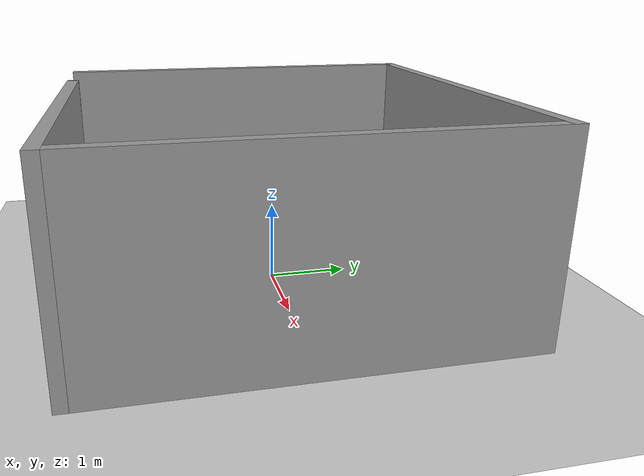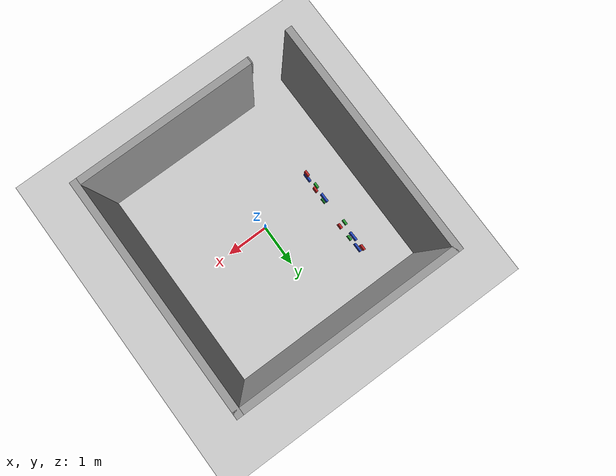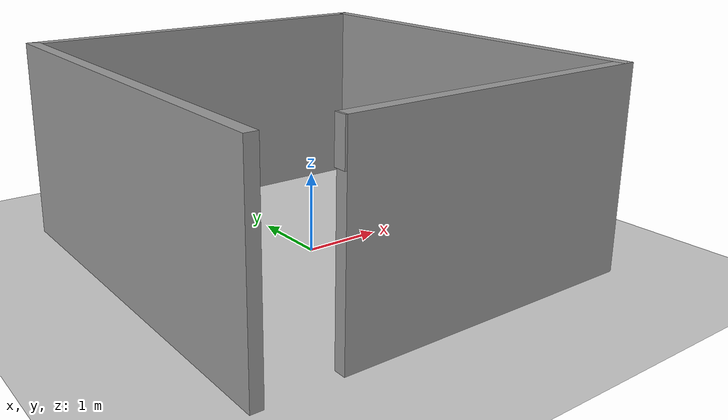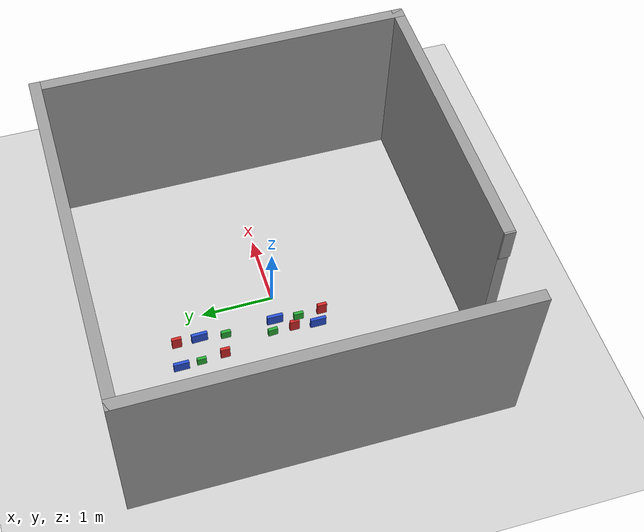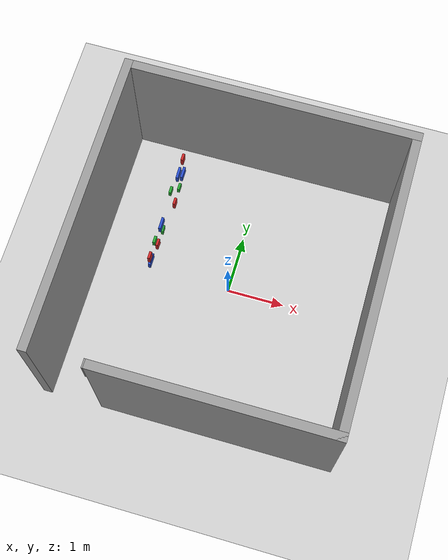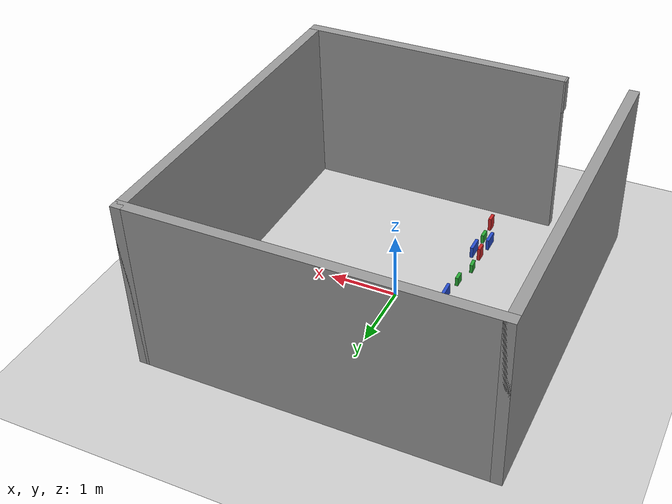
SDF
<sdf version="1.7">
 <world name="default">
  <light name="sun" type="directional">
   <pose>0 0 10 0 -0 0</pose>
   <diffuse>0.8 0.8 0.8 1</diffuse>
   <specular>0.2 0.2 0.2 1</specular>
   <attenuation>
    <range>1000</range>
    <constant>0.9</constant>
    <linear>0.01</linear>
    <quadratic>0.001</quadratic>
   </attenuation>
   <direction>-0.5 0.1 -0.9</direction>
   <spot><inner_angle>0</inner_angle><outer_angle>0</outer_angle><falloff>0</falloff></spot>
  </light>
  <model name="ground_plane">
   <static>1</static>
   <link name="link">
    <collision name="collision">
     <geometry><plane><normal>0 0 1</normal><size>100 100</size></plane></geometry>
     <surface>
      <contact><collide_bitmask>65535</collide_bitmask></contact>
      <friction><ode><mu>100</mu><mu2>50</mu2></ode></friction>
     </surface>
    </collision>
    <visual name="visual">
     <cast_shadows>0</cast_shadows>
     <geometry><plane><normal>0 0 1</normal><size>100 100</size></plane></geometry>
     <material>
      <script><uri>file://media/materials/scripts/gazebo.material</uri><name>Gazebo/Grey</name></script>
     </material>
    </visual>
   </link>
  </model>
  <gravity>0 0 -9.8</gravity>
  <magnetic_field>6e-06 2.3e-05 -4.2e-05</magnetic_field>
  <atmosphere type="adiabatic"/>
  <physics type="ode">
   <max_step_size>0.001</max_step_size>
   <real_time_factor>1</real_time_factor>
   <real_time_update_rate>1000</real_time_update_rate>
  </physics>
  <scene><ambient>0.4 0.4 0.4 1</ambient><background>0.7 0.7 0.7 1</background><shadows>1</shadows></scene>
  <spherical_coordinates>
   <surface_model>EARTH_WGS84</surface_model>
   <latitude_deg>0</latitude_deg>
   <longitude_deg>0</longitude_deg>
   <elevation>0</elevation>
   <heading_deg>0</heading_deg>
  </spherical_coordinates>
  <model name="box_red">
   <link name="link_1">
    <inertial>
     <mass>0.03</mass>
     <inertia><ixx>0.0005</ixx><ixy>0</ixy><ixz>0</ixz><iyy>0.0005</iyy><iyz>0</iyz><izz>0.0005</izz></inertia>
    </inertial>
    <visual name="visual">
     <geometry><box><size>0.04 0.12 0.18</size></box></geometry>
     <material>
      <lighting>1</lighting>
      <script><uri>file://media/materials/scripts/gazebo.material</uri><name>Gazebo/Red</name></script>
      <shader type="pixel"/>
     </material>
    </visual>
    <collision name="collision">
     <geometry><box><size>0.04 0.12 0.18</size></box></geometry>
     <surface>
      <friction>
       <ode><mu>1</mu><mu2>1</mu2><fdir1>0 0 0</fdir1><slip1>0</slip1><slip2>0</slip2></ode>
       <torsional>
        <coefficient>1</coefficient>
        <patch_radius>0</patch_radius>
        <surface_radius>0</surface_radius>
        <use_patch_radius>1</use_patch_radius>
        <ode><slip>0</slip></ode>
       </torsional>
      </friction>
      <bounce><restitution_coefficient>0</restitution_coefficient><threshold>1e+06</threshold></bounce>
      <contact>
       <collide_without_contact>0</collide_without_contact>
       <collide_without_contact_bitmask>1</collide_without_contact_bitmask>
       <collide_bitmask>1</collide_bitmask>
       <ode>
        <soft_cfm>0</soft_cfm>
        <soft_erp>0.2</soft_erp>
        <kp>1e+13</kp>
        <kd>1</kd>
        <max_vel>0.01</max_vel>
        <min_depth>0</min_depth>
       </ode>
       <bullet>
        <split_impulse>1</split_impulse>
        <split_impulse_penetration_threshold>-0.01</split_impulse_penetration_threshold>
        <soft_cfm>0</soft_cfm>
        <soft_erp>0.2</soft_erp>
        <kp>1e+13</kp>
        <kd>1</kd>
       </bullet>
      </contact>
     </surface>
    </collision>
   </link>
   <static>0</static>
   <pose>-1.24173 -0.278585 1.46139 0.000241 8.6e-05 7.2e-05</pose>
  </model>
  <model name="box_green">
   <link name="link_1">
    <inertial>
     <mass>0.03</mass>
     <inertia><ixx>0.0005</ixx><ixy>0</ixy><ixz>0</ixz><iyy>0.0005</iyy><iyz>0</iyz><izz>0.0005</izz></inertia>
    </inertial>
    <visual name="visual">
     <geometry><box><size>0.04 0.12 0.12</size></box></geometry>
     <material>
      <lighting>1</lighting>
      <script><uri>file://media/materials/scripts/gazebo.material</uri><name>Gazebo/Green</name></script>
      <shader type="pixel"/>
     </material>
    </visual>
    <collision name="collision">
     <geometry><box><size>0.04 0.12 0.12</size></box></geometry>
     <surface>
      <friction>
       <ode><mu>1</mu><mu2>1</mu2><fdir1>0 0 0</fdir1><slip1>0</slip1><slip2>0</slip2></ode>
       <torsional>
        <coefficient>1</coefficient>
        <patch_radius>0</patch_radius>
        <surface_radius>0</surface_radius>
        <use_patch_radius>1</use_patch_radius>
        <ode><slip>0</slip></ode>
       </torsional>
      </friction>
      <bounce><restitution_coefficient>0</restitution_coefficient><threshold>1e+06</threshold></bounce>
      <contact>
       <collide_without_contact>0</collide_without_contact>
       <collide_without_contact_bitmask>1</collide_without_contact_bitmask>
       <collide_bitmask>1</collide_bitmask>
       <ode>
        <soft_cfm>0</soft_cfm>
        <soft_erp>0.2</soft_erp>
        <kp>1e+13</kp>
        <kd>1</kd>
        <max_vel>0.01</max_vel>
        <min_depth>0</min_depth>
       </ode>
       <bullet>
        <split_impulse>1</split_impulse>
        <split_impulse_penetration_threshold>-0.01</split_impulse_penetration_threshold>
        <soft_cfm>0</soft_cfm>
        <soft_erp>0.2</soft_erp>
        <kp>1e+13</kp>
        <kd>1</kd>
       </bullet>
      </contact>
     </surface>
    </collision>
   </link>
   <static>0</static>
   <pose>-1.25383 0.022444 1.43999 -1e-06 0 -0.01014</pose>
  </model>
  <model name="box_blue">
   <link name="link_1">
    <inertial>
     <mass>0.03</mass>
     <inertia><ixx>0.0005</ixx><ixy>0</ixy><ixz>0</ixz><iyy>0.0005</iyy><iyz>0</iyz><izz>0.0005</izz></inertia>
    </inertial>
    <visual name="visual">
     <geometry><box><size>0.04 0.2 0.15</size></box></geometry>
     <material>
      <lighting>1</lighting>
      <script><uri>file://media/materials/scripts/gazebo.material</uri><name>Gazebo/Blue</name></script>
      <shader type="pixel"/>
     </material>
    </visual>
    <collision name="collision">
     <geometry><box><size>0.04 0.2 0.15</size></box></geometry>
     <surface>
      <friction>
       <ode><mu>1</mu><mu2>1</mu2><fdir1>0 0 0</fdir1><slip1>0</slip1><slip2>0</slip2></ode>
       <torsional>
        <coefficient>1</coefficient>
        <patch_radius>0</patch_radius>
        <surface_radius>0</surface_radius>
        <use_patch_radius>1</use_patch_radius>
        <ode><slip>0</slip></ode>
       </torsional>
      </friction>
      <bounce><restitution_coefficient>0</restitution_coefficient><threshold>1e+06</threshold></bounce>
      <contact>
       <collide_without_contact>0</collide_without_contact>
       <collide_without_contact_bitmask>1</collide_without_contact_bitmask>
       <collide_bitmask>1</collide_bitmask>
       <ode>
        <soft_cfm>0</soft_cfm>
        <soft_erp>0.2</soft_erp>
        <kp>1e+13</kp>
        <kd>1</kd>
        <max_vel>0.01</max_vel>
        <min_depth>0</min_depth>
       </ode>
       <bullet>
        <split_impulse>1</split_impulse>
        <split_impulse_penetration_threshold>-0.01</split_impulse_penetration_threshold>
        <soft_cfm>0</soft_cfm>
        <soft_erp>0.2</soft_erp>
        <kp>1e+13</kp>
        <kd>1</kd>
       </bullet>
      </contact>
     </surface>
    </collision>
   </link>
   <static>0</static>
   <pose>-1.23177 0.317564 1.455 2e-05 -0 0.004125</pose>
  </model>
  <model name="box_blue_clone">
   <link name="link_1">
    <inertial>
     <mass>0.03</mass>
     <inertia><ixx>0.0005</ixx><ixy>0</ixy><ixz>0</ixz><iyy>0.0005</iyy><iyz>0</iyz><izz>0.0005</izz></inertia>
    </inertial>
    <visual name="visual">
     <geometry><box><size>0.04 0.2 0.15</size></box></geometry>
     <material>
      <lighting>1</lighting>
      <script><uri>file://media/materials/scripts/gazebo.material</uri><name>Gazebo/Blue</name></script>
      <shader type="pixel"/>
     </material>
    </visual>
    <collision name="collision">
     <geometry><box><size>0.04 0.2 0.15</size></box></geometry>
     <surface>
      <friction>
       <ode><mu>1</mu><mu2>1</mu2><fdir1>0 0 0</fdir1><slip1>0</slip1><slip2>0</slip2></ode>
       <torsional>
        <coefficient>1</coefficient>
        <patch_radius>0</patch_radius>
        <surface_radius>0</surface_radius>
        <use_patch_radius>1</use_patch_radius>
        <ode><slip>0</slip></ode>
       </torsional>
      </friction>
      <bounce><restitution_coefficient>0</restitution_coefficient><threshold>1e+06</threshold></bounce>
      <contact>
       <collide_without_contact>0</collide_without_contact>
       <collide_without_contact_bitmask>1</collide_without_contact_bitmask>
       <collide_bitmask>1</collide_bitmask>
       <ode>
        <soft_cfm>0</soft_cfm>
        <soft_erp>0.2</soft_erp>
        <kp>1e+13</kp>
        <kd>1</kd>
        <max_vel>0.01</max_vel>
        <min_depth>0</min_depth>
       </ode>
       <bullet>
        <split_impulse>1</split_impulse>
        <split_impulse_penetration_threshold>-0.01</split_impulse_penetration_threshold>
        <soft_cfm>0</soft_cfm>
        <soft_erp>0.2</soft_erp>
        <kp>1e+13</kp>
        <kd>1</kd>
       </bullet>
      </contact>
     </surface>
    </collision>
   </link>
   <static>0</static>
   <pose>-1.25294 -0.238672 1.1864 0.000242 8.6e-05 0.00082</pose>
  </model>
  <model name="box_red_clone">
   <link name="link_1">
    <inertial>
     <mass>0.03</mass>
     <inertia><ixx>0.0005</ixx><ixy>0</ixy><ixz>0</ixz><iyy>0.0005</iyy><iyz>0</iyz><izz>0.0005</izz></inertia>
    </inertial>
    <visual name="visual">
     <geometry><box><size>0.04 0.12 0.18</size></box></geometry>
     <material>
      <lighting>1</lighting>
      <script><uri>file://media/materials/scripts/gazebo.material</uri><name>Gazebo/Red</name></script>
      <shader type="pixel"/>
     </material>
    </visual>
    <collision name="collision">
     <geometry><box><size>0.04 0.12 0.18</size></box></geometry>
     <surface>
      <friction>
       <ode><mu>1</mu><mu2>1</mu2><fdir1>0 0 0</fdir1><slip1>0</slip1><slip2>0</slip2></ode>
       <torsional>
        <coefficient>1</coefficient>
        <patch_radius>0</patch_radius>
        <surface_radius>0</surface_radius>
        <use_patch_radius>1</use_patch_radius>
        <ode><slip>0</slip></ode>
       </torsional>
      </friction>
      <bounce><restitution_coefficient>0</restitution_coefficient><threshold>1e+06</threshold></bounce>
      <contact>
       <collide_without_contact>0</collide_without_contact>
       <collide_without_contact_bitmask>1</collide_without_contact_bitmask>
       <collide_bitmask>1</collide_bitmask>
       <ode>
        <soft_cfm>0</soft_cfm>
        <soft_erp>0.2</soft_erp>
        <kp>1e+13</kp>
        <kd>1</kd>
        <max_vel>0.01</max_vel>
        <min_depth>0</min_depth>
       </ode>
       <bullet>
        <split_impulse>1</split_impulse>
        <split_impulse_penetration_threshold>-0.01</split_impulse_penetration_threshold>
        <soft_cfm>0</soft_cfm>
        <soft_erp>0.2</soft_erp>
        <kp>1e+13</kp>
        <kd>1</kd>
       </bullet>
      </contact>
     </surface>
    </collision>
   </link>
   <static>0</static>
   <pose>-1.22964 0.063134 1.20996 2.1e-05 1e-06 -0.014025</pose>
  </model>
  <model name="box_green_clone">
   <link name="link_1">
    <inertial>
     <mass>0.03</mass>
     <inertia><ixx>0.0005</ixx><ixy>0</ixy><ixz>0</ixz><iyy>0.0005</iyy><iyz>0</iyz><izz>0.0005</izz></inertia>
    </inertial>
    <visual name="visual">
     <geometry><box><size>0.04 0.12 0.12</size></box></geometry>
     <material>
      <lighting>1</lighting>
      <script><uri>file://media/materials/scripts/gazebo.material</uri><name>Gazebo/Green</name></script>
      <shader type="pixel"/>
     </material>
    </visual>
    <collision name="collision">
     <geometry><box><size>0.04 0.12 0.12</size></box></geometry>
     <surface>
      <friction>
       <ode><mu>1</mu><mu2>1</mu2><fdir1>0 0 0</fdir1><slip1>0</slip1><slip2>0</slip2></ode>
       <torsional>
        <coefficient>1</coefficient>
        <patch_radius>0</patch_radius>
        <surface_radius>0</surface_radius>
        <use_patch_radius>1</use_patch_radius>
        <ode><slip>0</slip></ode>
       </torsional>
      </friction>
      <bounce><restitution_coefficient>0</restitution_coefficient><threshold>1e+06</threshold></bounce>
      <contact>
       <collide_without_contact>0</collide_without_contact>
       <collide_without_contact_bitmask>1</collide_without_contact_bitmask>
       <collide_bitmask>1</collide_bitmask>
       <ode>
        <soft_cfm>0</soft_cfm>
        <soft_erp>0.2</soft_erp>
        <kp>1e+13</kp>
        <kd>1</kd>
        <max_vel>0.01</max_vel>
        <min_depth>0</min_depth>
       </ode>
       <bullet>
        <split_impulse>1</split_impulse>
        <split_impulse_penetration_threshold>-0.01</split_impulse_penetration_threshold>
        <soft_cfm>0</soft_cfm>
        <soft_erp>0.2</soft_erp>
        <kp>1e+13</kp>
        <kd>1</kd>
       </bullet>
      </contact>
     </surface>
    </collision>
   </link>
   <static>0</static>
   <pose>-1.23032 0.342723 1.18 2e-05 -1e-06 0.059332</pose>
  </model>
  <model name="Arena">
   <link name="Wall_10">
    <collision name="Wall_10_Collision">
     <geometry><box><size>5 0.15 2.5</size></box></geometry>
     <pose>0 0 1.25 0 -0 0</pose>
    </collision>
    <visual name="Wall_10_Visual">
     <pose>0 0 1.25 0 -0 0</pose>
     <geometry><box><size>5 0.15 2.5</size></box></geometry>
     <material>
      <script><uri>file://media/materials/scripts/gazebo.material</uri><name>Gazebo/Grey</name></script>
      <ambient>1 1 1 1</ambient>
     </material>
     <meta><layer>0</layer></meta>
    </visual>
    <pose>0 2.5 0 0 -0 0</pose>
   </link>
   <link name="Wall_11">
    <collision name="Wall_11_Collision">
     <geometry><box><size>5.15 0.15 2.5</size></box></geometry>
     <pose>0 0 1.25 0 -0 0</pose>
    </collision>
    <visual name="Wall_11_Visual">
     <pose>0 0 1.25 0 -0 0</pose>
     <geometry><box><size>5.15 0.15 2.5</size></box></geometry>
     <material>
      <script><uri>file://media/materials/scripts/gazebo.material</uri><name>Gazebo/Grey</name></script>
      <ambient>1 1 1 1</ambient>
     </material>
     <meta><layer>0</layer></meta>
    </visual>
    <pose>2.425 0 0 0 -0 -1.5708</pose>
   </link>
   <link name="Wall_14">
    <pose>0.5 -2.5 0 0 -0 3.14159</pose>
    <visual name="Wall_14_Visual_0">
     <pose>-0.0125 0 1.25 0 -0 0</pose>
     <geometry><box><size>3.975 0.15 2.5</size></box></geometry>
     <material>
      <script><uri>file://media/materials/scripts/gazebo.material</uri><name>Gazebo/Grey</name></script>
      <ambient>1 1 1 1</ambient>
     </material>
     <meta><layer>0</layer></meta>
    </visual>
    <collision name="Wall_14_Collision_0">
     <geometry><box><size>3.975 0.15 2.5</size></box></geometry>
     <pose>-0.0125 0 1.25 0 -0 0</pose>
    </collision>
    <visual name="Wall_14_Visual_1">
     <pose>1.9875 0 2.25 0 -0 0</pose>
     <geometry><box><size>0.025 0.15 0.5</size></box></geometry>
     <material>
      <script><uri>file://media/materials/scripts/gazebo.material</uri><name>Gazebo/Grey</name></script>
      <ambient>1 1 1 1</ambient>
     </material>
     <meta><layer>0</layer></meta>
    </visual>
    <collision name="Wall_14_Collision_1">
     <geometry><box><size>0.025 0.15 0.5</size></box></geometry>
     <pose>1.9875 0 2.25 0 -0 0</pose>
    </collision>
   </link>
   <link name="Wall_8">
    <collision name="Wall_8_Collision">
     <geometry><box><size>5.15 0.15 2.5</size></box></geometry>
     <pose>0 0 1.25 0 -0 0</pose>
    </collision>
    <visual name="Wall_8_Visual">
     <pose>0 0 1.25 0 -0 0</pose>
     <geometry><box><size>5.15 0.15 2.5</size></box></geometry>
     <material>
      <script><uri>file://media/materials/scripts/gazebo.material</uri><name>Gazebo/Grey</name></script>
      <ambient>1 1 1 1</ambient>
     </material>
     <meta><layer>0</layer></meta>
    </visual>
    <pose>-2.425 0 0 0 -0 1.5708</pose>
   </link>
   <static>1</static>
  </model>
  <model name="box_blue_clone_0">
   <link name="link_1">
    <inertial>
     <mass>0.03</mass>
     <inertia><ixx>0.0005</ixx><ixy>0</ixy><ixz>0</ixz><iyy>0.0005</iyy><iyz>0</iyz><izz>0.0005</izz></inertia>
    </inertial>
    <visual name="visual">
     <geometry><box><size>0.04 0.2 0.15</size></box></geometry>
     <material>
      <lighting>1</lighting>
      <script><uri>file://media/materials/scripts/gazebo.material</uri><name>Gazebo/Blue</name></script>
      <shader type="pixel"/>
     </material>
    </visual>
    <collision name="collision">
     <geometry><box><size>0.04 0.2 0.15</size></box></geometry>
     <surface>
      <friction>
       <ode><mu>1</mu><mu2>1</mu2><fdir1>0 0 0</fdir1><slip1>0</slip1><slip2>0</slip2></ode>
       <torsional>
        <coefficient>1</coefficient>
        <patch_radius>0</patch_radius>
        <surface_radius>0</surface_radius>
        <use_patch_radius>1</use_patch_radius>
        <ode><slip>0</slip></ode>
       </torsional>
      </friction>
      <bounce><restitution_coefficient>0</restitution_coefficient><threshold>1e+06</threshold></bounce>
      <contact>
       <collide_without_contact>0</collide_without_contact>
       <collide_without_contact_bitmask>1</collide_without_contact_bitmask>
       <collide_bitmask>1</collide_bitmask>
       <ode>
        <soft_cfm>0</soft_cfm>
        <soft_erp>0.2</soft_erp>
        <kp>1e+13</kp>
        <kd>1</kd>
        <max_vel>0.01</max_vel>
        <min_depth>0</min_depth>
       </ode>
       <bullet>
        <split_impulse>1</split_impulse>
        <split_impulse_penetration_threshold>-0.01</split_impulse_penetration_threshold>
        <soft_cfm>0</soft_cfm>
        <soft_erp>0.2</soft_erp>
        <kp>1e+13</kp>
        <kd>1</kd>
       </bullet>
      </contact>
     </surface>
    </collision>
   </link>
   <static>0</static>
   <pose>-1.2288 1.26918 1.45495 1.5e-05 -0 0.02549</pose>
  </model>
  <model name="box_green_clone_0">
   <link name="link_1">
    <inertial>
     <mass>0.03</mass>
     <inertia><ixx>0.0005</ixx><ixy>0</ixy><ixz>0</ixz><iyy>0.0005</iyy><iyz>0</iyz><izz>0.0005</izz></inertia>
    </inertial>
    <visual name="visual">
     <geometry><box><size>0.04 0.12 0.12</size></box></geometry>
     <material>
      <lighting>1</lighting>
      <script><uri>file://media/materials/scripts/gazebo.material</uri><name>Gazebo/Green</name></script>
      <shader type="pixel"/>
     </material>
    </visual>
    <collision name="collision">
     <geometry><box><size>0.04 0.12 0.12</size></box></geometry>
     <surface>
      <friction>
       <ode><mu>1</mu><mu2>1</mu2><fdir1>0 0 0</fdir1><slip1>0</slip1><slip2>0</slip2></ode>
       <torsional>
        <coefficient>1</coefficient>
        <patch_radius>0</patch_radius>
        <surface_radius>0</surface_radius>
        <use_patch_radius>1</use_patch_radius>
        <ode><slip>0</slip></ode>
       </torsional>
      </friction>
      <bounce><restitution_coefficient>0</restitution_coefficient><threshold>1e+06</threshold></bounce>
      <contact>
       <collide_without_contact>0</collide_without_contact>
       <collide_without_contact_bitmask>1</collide_without_contact_bitmask>
       <collide_bitmask>1</collide_bitmask>
       <ode>
        <soft_cfm>0</soft_cfm>
        <soft_erp>0.2</soft_erp>
        <kp>1e+13</kp>
        <kd>1</kd>
        <max_vel>0.01</max_vel>
        <min_depth>0</min_depth>
       </ode>
       <bullet>
        <split_impulse>1</split_impulse>
        <split_impulse_penetration_threshold>-0.01</split_impulse_penetration_threshold>
        <soft_cfm>0</soft_cfm>
        <soft_erp>0.2</soft_erp>
        <kp>1e+13</kp>
        <kd>1</kd>
       </bullet>
      </contact>
     </surface>
    </collision>
   </link>
   <static>0</static>
   <pose>-1.26547 0.947508 1.43999 1.6e-05 -0 -0.010193</pose>
  </model>
  <model name="box_red_clone_0">
   <link name="link_1">
    <inertial>
     <mass>0.03</mass>
     <inertia><ixx>0.0005</ixx><ixy>0</ixy><ixz>0</ixz><iyy>0.0005</iyy><iyz>0</iyz><izz>0.0005</izz></inertia>
    </inertial>
    <visual name="visual">
     <geometry><box><size>0.04 0.12 0.18</size></box></geometry>
     <material>
      <lighting>1</lighting>
      <script><uri>file://media/materials/scripts/gazebo.material</uri><name>Gazebo/Red</name></script>
      <shader type="pixel"/>
     </material>
    </visual>
    <collision name="collision">
     <geometry><box><size>0.04 0.12 0.18</size></box></geometry>
     <surface>
      <friction>
       <ode><mu>1</mu><mu2>1</mu2><fdir1>0 0 0</fdir1><slip1>0</slip1><slip2>0</slip2></ode>
       <torsional>
        <coefficient>1</coefficient>
        <patch_radius>0</patch_radius>
        <surface_radius>0</surface_radius>
        <use_patch_radius>1</use_patch_radius>
        <ode><slip>0</slip></ode>
       </torsional>
      </friction>
      <bounce><restitution_coefficient>0</restitution_coefficient><threshold>1e+06</threshold></bounce>
      <contact>
       <collide_without_contact>0</collide_without_contact>
       <collide_without_contact_bitmask>1</collide_without_contact_bitmask>
       <collide_bitmask>1</collide_bitmask>
       <ode>
        <soft_cfm>0</soft_cfm>
        <soft_erp>0.2</soft_erp>
        <kp>1e+13</kp>
        <kd>1</kd>
        <max_vel>0.01</max_vel>
        <min_depth>0</min_depth>
       </ode>
       <bullet>
        <split_impulse>1</split_impulse>
        <split_impulse_penetration_threshold>-0.01</split_impulse_penetration_threshold>
        <soft_cfm>0</soft_cfm>
        <soft_erp>0.2</soft_erp>
        <kp>1e+13</kp>
        <kd>1</kd>
       </bullet>
      </contact>
     </surface>
    </collision>
   </link>
   <static>0</static>
   <pose>-1.23818 1.55301 1.47 1.6e-05 -0 -4.2e-05</pose>
  </model>
  <model name="box_red_clone_1">
   <link name="link_1">
    <inertial>
     <mass>0.03</mass>
     <inertia><ixx>0.0005</ixx><ixy>0</ixy><ixz>0</ixz><iyy>0.0005</iyy><iyz>0</iyz><izz>0.0005</izz></inertia>
    </inertial>
    <visual name="visual">
     <geometry><box><size>0.04 0.12 0.18</size></box></geometry>
     <material>
      <lighting>1</lighting>
      <script><uri>file://media/materials/scripts/gazebo.material</uri><name>Gazebo/Red</name></script>
      <shader type="pixel"/>
     </material>
    </visual>
    <collision name="collision">
     <geometry><box><size>0.04 0.12 0.18</size></box></geometry>
     <surface>
      <friction>
       <ode><mu>1</mu><mu2>1</mu2><fdir1>0 0 0</fdir1><slip1>0</slip1><slip2>0</slip2></ode>
       <torsional>
        <coefficient>1</coefficient>
        <patch_radius>0</patch_radius>
        <surface_radius>0</surface_radius>
        <use_patch_radius>1</use_patch_radius>
        <ode><slip>0</slip></ode>
       </torsional>
      </friction>
      <bounce><restitution_coefficient>0</restitution_coefficient><threshold>1e+06</threshold></bounce>
      <contact>
       <collide_without_contact>0</collide_without_contact>
       <collide_without_contact_bitmask>1</collide_without_contact_bitmask>
       <collide_bitmask>1</collide_bitmask>
       <ode>
        <soft_cfm>0</soft_cfm>
        <soft_erp>0.2</soft_erp>
        <kp>1e+13</kp>
        <kd>1</kd>
        <max_vel>0.01</max_vel>
        <min_depth>0</min_depth>
       </ode>
       <bullet>
        <split_impulse>1</split_impulse>
        <split_impulse_penetration_threshold>-0.01</split_impulse_penetration_threshold>
        <soft_cfm>0</soft_cfm>
        <soft_erp>0.2</soft_erp>
        <kp>1e+13</kp>
        <kd>1</kd>
       </bullet>
      </contact>
     </surface>
    </collision>
   </link>
   <static>0</static>
   <pose>-1.22309 0.959316 0.949989 1.6e-05 0 -0.007081</pose>
  </model>
  <model name="box_green_clone_0_clone">
   <link name="link_1">
    <inertial>
     <mass>0.03</mass>
     <inertia><ixx>0.0005</ixx><ixy>0</ixy><ixz>0</ixz><iyy>0.0005</iyy><iyz>0</iyz><izz>0.0005</izz></inertia>
    </inertial>
    <visual name="visual">
     <geometry><box><size>0.04 0.12 0.12</size></box></geometry>
     <material>
      <lighting>1</lighting>
      <script><uri>file://media/materials/scripts/gazebo.material</uri><name>Gazebo/Green</name></script>
      <shader type="pixel"/>
     </material>
    </visual>
    <collision name="collision">
     <geometry><box><size>0.04 0.12 0.12</size></box></geometry>
     <surface>
      <friction>
       <ode><mu>1</mu><mu2>1</mu2><fdir1>0 0 0</fdir1><slip1>0</slip1><slip2>0</slip2></ode>
       <torsional>
        <coefficient>1</coefficient>
        <patch_radius>0</patch_radius>
        <surface_radius>0</surface_radius>
        <use_patch_radius>1</use_patch_radius>
        <ode><slip>0</slip></ode>
       </torsional>
      </friction>
      <bounce><restitution_coefficient>0</restitution_coefficient><threshold>1e+06</threshold></bounce>
      <contact>
       <collide_without_contact>0</collide_without_contact>
       <collide_without_contact_bitmask>1</collide_without_contact_bitmask>
       <collide_bitmask>1</collide_bitmask>
       <ode>
        <soft_cfm>0</soft_cfm>
        <soft_erp>0.2</soft_erp>
        <kp>1e+13</kp>
        <kd>1</kd>
        <max_vel>0.01</max_vel>
        <min_depth>0</min_depth>
       </ode>
       <bullet>
        <split_impulse>1</split_impulse>
        <split_impulse_penetration_threshold>-0.01</split_impulse_penetration_threshold>
        <soft_cfm>0</soft_cfm>
        <soft_erp>0.2</soft_erp>
        <kp>1e+13</kp>
        <kd>1</kd>
       </bullet>
      </contact>
     </surface>
    </collision>
   </link>
   <static>0</static>
   <pose>-1.23941 1.26834 0.919951 0 0 -0.007241</pose>
  </model>
  <model name="box_blue_clone_0_clone">
   <link name="link_1">
    <inertial>
     <mass>0.03</mass>
     <inertia><ixx>0.0005</ixx><ixy>0</ixy><ixz>0</ixz><iyy>0.0005</iyy><iyz>0</iyz><izz>0.0005</izz></inertia>
    </inertial>
    <visual name="visual">
     <geometry><box><size>0.04 0.2 0.15</size></box></geometry>
     <material>
      <lighting>1</lighting>
      <script><uri>file://media/materials/scripts/gazebo.material</uri><name>Gazebo/Blue</name></script>
      <shader type="pixel"/>
     </material>
    </visual>
    <collision name="collision">
     <geometry><box><size>0.04 0.2 0.15</size></box></geometry>
     <surface>
      <friction>
       <ode><mu>1</mu><mu2>1</mu2><fdir1>0 0 0</fdir1><slip1>0</slip1><slip2>0</slip2></ode>
       <torsional>
        <coefficient>1</coefficient>
        <patch_radius>0</patch_radius>
        <surface_radius>0</surface_radius>
        <use_patch_radius>1</use_patch_radius>
        <ode><slip>0</slip></ode>
       </torsional>
      </friction>
      <bounce><restitution_coefficient>0</restitution_coefficient><threshold>1e+06</threshold></bounce>
      <contact>
       <collide_without_contact>0</collide_without_contact>
       <collide_without_contact_bitmask>1</collide_without_contact_bitmask>
       <collide_bitmask>1</collide_bitmask>
       <ode>
        <soft_cfm>0</soft_cfm>
        <soft_erp>0.2</soft_erp>
        <kp>1e+13</kp>
        <kd>1</kd>
        <max_vel>0.01</max_vel>
        <min_depth>0</min_depth>
       </ode>
       <bullet>
        <split_impulse>1</split_impulse>
        <split_impulse_penetration_threshold>-0.01</split_impulse_penetration_threshold>
        <soft_cfm>0</soft_cfm>
        <soft_erp>0.2</soft_erp>
        <kp>1e+13</kp>
        <kd>1</kd>
       </bullet>
      </contact>
     </surface>
    </collision>
   </link>
   <static>0</static>
   <pose>-1.25321 1.53036 0.934958 1.5e-05 -0 8e-05</pose>
  </model>
 </world>
</sdf>
